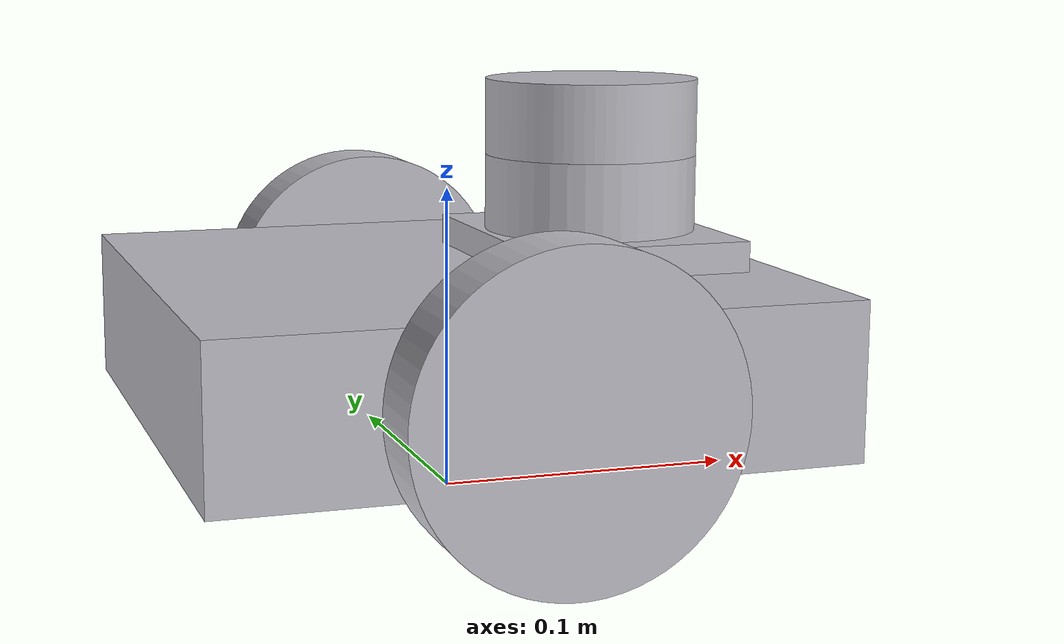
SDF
<?xml version='1.0'?>
<sdf version='1.6'>
  <model name='fusionbot'>
    <link name='base_footprint'>
      <pose frame=''>0 0 0 0 -0 0</pose>
      <inertial>
        <pose frame=''>0.003759 0 0.052804 0 -0 0</pose>
        <mass>2.30796</mass>
        <inertia>
          <ixx>0.00789</ixx>
          <ixy>0</ixy>
          <ixz>-0.000325</ixz>
          <iyy>0.008347</iyy>
          <iyz>0</iyz>
          <izz>0.01475</izz>
        </inertia>
      </inertial>
      <collision name='base_footprint_fixed_joint_lump__base_link_collision'>
        <pose frame=''>0 0 0 0 -0 0</pose>
        <geometry>
          <mesh>
            <scale>0.001 0.001 0.001</scale>
            <uri>model://fusionbot/meshes/fusionbot/base_link.stl</uri>
          </mesh>
        </geometry>
        <surface>
          <contact>
            <ode/>
          </contact>
          <friction>
            <ode>
              <mu>0.1</mu>
              <mu2>0.1</mu2>
            </ode>
          </friction>
        </surface>
      </collision>
      <visual name='base_footprint_fixed_joint_lump__base_link_visual'>
        <pose frame=''>0 0 0 0 -0 0</pose>
        <geometry>
          <mesh>
            <scale>0.001 0.001 0.001</scale>
            <uri>model://fusionbot/meshes/fusionbot/base_link.stl</uri>
          </mesh>
        </geometry>
        <material>
          <script>
            <name>Gazebo/Silver</name>
            <uri>file://media/materials/scripts/gazebo.material</uri>
          </script>
        </material>
      </visual>
      <gravity>1</gravity>
      <velocity_decay/>
      <self_collide>1</self_collide>
      <gravity>1</gravity>
    </link>
    <link name='left_wheel_1'>
      <pose frame=''>0 0.1 0.05 0 -0 0</pose>
      <inertial>
        <pose frame=''>-0 0.0125 0 0 -0 0</pose>
        <mass>0.182605</mass>
        <inertia>
          <ixx>0.000124</ixx>
          <ixy>0</ixy>
          <ixz>0</ixz>
          <iyy>0.000228</iyy>
          <iyz>-0</iyz>
          <izz>0.000124</izz>
        </inertia>
      </inertial>
      <collision name='left_wheel_1_collision'>
        <pose frame=''>-0 -0.1 -0.05 0 -0 0</pose>
        <geometry>
          <mesh>
            <scale>0.001 0.001 0.001</scale>
            <uri>model://fusionbot/meshes/fusionbot/left_wheel_1.stl</uri>
          </mesh>
        </geometry>
        <surface>
          <contact>
            <ode/>
          </contact>
          <friction>
            <ode>
              <mu>1500</mu>
              <mu2>1500</mu2>
            </ode>
          </friction>
        </surface>
      </collision>
      <visual name='left_wheel_1_visual'>
        <pose frame=''>-0 -0.1 -0.05 0 -0 0</pose>
        <geometry>
          <mesh>
            <scale>0.001 0.001 0.001</scale>
            <uri>model://fusionbot/meshes/fusionbot/left_wheel_1.stl</uri>
          </mesh>
        </geometry>
        <material>
          <script>
            <name>Gazebo/Silver</name>
            <uri>file://media/materials/scripts/gazebo.material</uri>
          </script>
        </material>
      </visual>
      <gravity>1</gravity>
      <velocity_decay/>
      <self_collide>1</self_collide>
    </link>
    <joint name='left_wheel_joint' type='revolute'>
      <child>left_wheel_1</child>
      <parent>base_footprint</parent>
      <axis>
        <xyz>0 1 0</xyz>
        <limit>
          <lower>-1e+16</lower>
          <upper>1e+16</upper>
        </limit>
        <dynamics>
          <spring_reference>0</spring_reference>
          <spring_stiffness>0</spring_stiffness>
        </dynamics>
        <use_parent_model_frame>0</use_parent_model_frame>
      </axis>
    </joint>
    <link name='lidar_1'>
      <pose frame=''>0.05 0 0.11 0 -0 0</pose>
      <inertial>
        <pose frame=''>0 0 0.0125 0 -0 0</pose>
        <mass>0.755259</mass>
        <inertia>
          <ixx>0.000271</ixx>
          <ixy>0</ixy>
          <ixz>0</ixz>
          <iyy>0.000271</iyy>
          <iyz>-0</iyz>
          <izz>0.000463</izz>
        </inertia>
      </inertial>
      <collision name='lidar_1_collision'>
        <pose frame=''>-0.05 -0 -0.11 0 -0 0</pose>
        <geometry>
          <mesh>
            <scale>0.001 0.001 0.001</scale>
            <uri>model://fusionbot/meshes/fusionbot/lidar_1.stl</uri>
          </mesh>
        </geometry>
        <surface>
          <contact>
            <ode/>
          </contact>
          <friction>
            <ode>
              <mu>0.2</mu>
              <mu2>0.2</mu2>
            </ode>
          </friction>
        </surface>
      </collision>
      <visual name='lidar_1_visual'>
        <pose frame=''>-0.05 -0 -0.11 0 -0 0</pose>
        <geometry>
          <mesh>
            <scale>0.001 0.001 0.001</scale>
            <uri>model://fusionbot/meshes/fusionbot/lidar_1.stl</uri>
          </mesh>
        </geometry>
        <material>
          <script>
            <name>Gazebo/Silver</name>
            <uri>file://media/materials/scripts/gazebo.material</uri>
          </script>
        </material>
      </visual>
      <gravity>1</gravity>
      <velocity_decay/>
      <self_collide>1</self_collide>
      <sensor name="rp_lidar_a1" type="ray">
        <always_on>true</always_on>
        <visualize>true</visualize>
        <pose>0.0 0 0.02 0 0 0</pose>
        <update_rate>5.5</update_rate>
        <ray>
          <scan>
            <horizontal>
              <samples>360</samples>
              <resolution>1.000000</resolution>
              <min_angle>-1.5707</min_angle>
              <max_angle>1.5707</max_angle>
            </horizontal>
          </scan>
          <range>
            <min>0.2</min>
            <max>10.0</max>
            <resolution>0.05</resolution>
          </range>
          <noise>
            <type>gaussian</type>
            <mean>0.0</mean>
            <stddev>0.01</stddev>
          </noise>
        </ray>
        <plugin name="fusionbot_laserscan" filename="libgazebo_ros_ray_sensor.so">
          <ros>
            <remapping>~/out:=scan</remapping>
          </ros>
          <output_type>sensor_msgs/LaserScan</output_type>
          <frame_name>laser_frame</frame_name>
        </plugin>
      </sensor>
    </link>
    <joint name='lidar_joint' type='fixed'>
      <child>lidar_1</child>
      <parent>base_footprint</parent>
      <pose frame=''>0 0 0 0 -0 0</pose>
      <physics>
        <ode>
          <limit>
            <cfm>0</cfm>
            <erp>0.2</erp>
          </limit>
          <suspension>
            <cfm>0</cfm>
            <erp>0.2</erp>
          </suspension>
        </ode>
      </physics>
    </joint>

    <link name='right_wheel_1'>
      <pose frame=''>0 -0.1 0.05 0 -0 0</pose>
      <inertial>
        <pose frame=''>-0 -0.0125 0 0 -0 0</pose>
        <mass>0.182605</mass>
        <inertia>
          <ixx>0.000124</ixx>
          <ixy>-0</ixy>
          <ixz>0</ixz>
          <iyy>0.000228</iyy>
          <iyz>0</iyz>
          <izz>0.000124</izz>
        </inertia>
      </inertial>
      <collision name='right_wheel_1_collision'>
        <pose frame=''>-0 0.1 -0.05 0 -0 0</pose>
        <geometry>
          <mesh>
            <scale>0.001 0.001 0.001</scale>
            <uri>model://fusionbot/meshes/fusionbot/right_wheel_1.stl</uri>
          </mesh>
        </geometry>
        <surface>
          <contact>
            <ode/>
          </contact>
          <friction>
            <ode>
              <mu>1500</mu>
              <mu2>1500</mu2>
            </ode>
          </friction>
        </surface>
      </collision>
      <visual name='right_wheel_1_visual'>
        <pose frame=''>-0 0.1 -0.05 0 -0 0</pose>
        <geometry>
          <mesh>
            <scale>0.001 0.001 0.001</scale>
            <uri>model://fusionbot/meshes/fusionbot/right_wheel_1.stl</uri>
          </mesh>
        </geometry>
        <material>
          <script>
            <name>Gazebo/Silver</name>
            <uri>file://media/materials/scripts/gazebo.material</uri>
          </script>
        </material>
      </visual>
      <gravity>1</gravity>
      <velocity_decay/>
      <self_collide>1</self_collide>
    </link>
    <joint name='right_wheel_joint' type='revolute'>
      <child>right_wheel_1</child>
      <parent>base_footprint</parent>
      <axis>
        <xyz>0 1 0</xyz>
        <limit>
          <lower>-1e+16</lower>
          <upper>1e+16</upper>
        </limit>
        <dynamics>
          <spring_reference>0</spring_reference>
          <spring_stiffness>0</spring_stiffness>
        </dynamics>
        <use_parent_model_frame>0</use_parent_model_frame>
      </axis>
    </joint>
    <static>0</static>
    <plugin name='control' filename='libgazebo_ros_control.so'/>

    <plugin name='differential_drive_controller' filename='libgazebo_ros_diff_drive.so'>
      <update_rate>30</update_rate>
      <left_joint>left_wheel_joint</left_joint>
      <right_joint>right_wheel_joint</right_joint>
      <wheel_separation>0.2</wheel_separation>
      <wheel_diameter>0.1</wheel_diameter>
      <max_wheel_torque>50</max_wheel_torque>
      <max_wheel_acceleration>1.0</max_wheel_acceleration>
      <command_topic>cmd_vel</command_topic>
      <publish_odom>1</publish_odom>
      <publish_odom_tf>1</publish_odom_tf>
      <publish_wheel_tf>0</publish_wheel_tf>
      <odometry_topic>odom</odometry_topic>
      <odometry_frame>odom</odometry_frame>
      <robot_base_frame>base_footprint</robot_base_frame>
    </plugin>

    <plugin name='fusionbot_joint_state' filename='libgazebo_ros_joint_state_publisher.so'>
      <ros>
        <remapping>~/out:=joint_states</remapping>
      </ros>
      <update_rate>30</update_rate>
      <joint_name>right_wheel_joint</joint_name>
      <joint_name>left_wheel_joint</joint_name>
    </plugin>
  </model>
</sdf>
